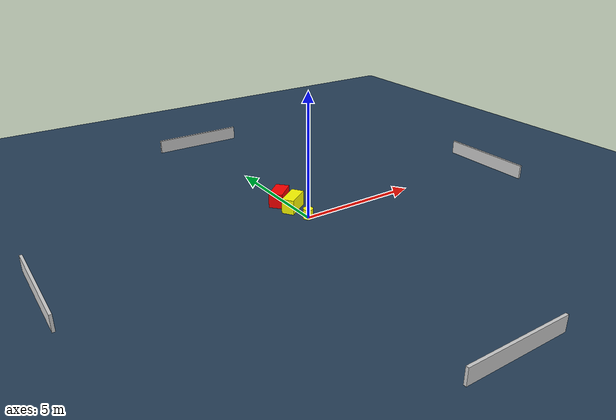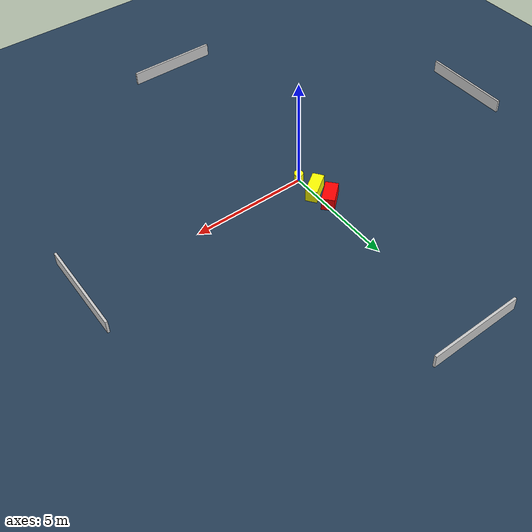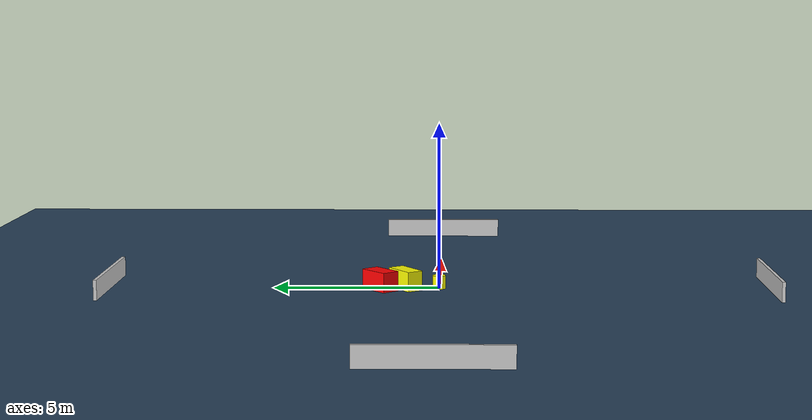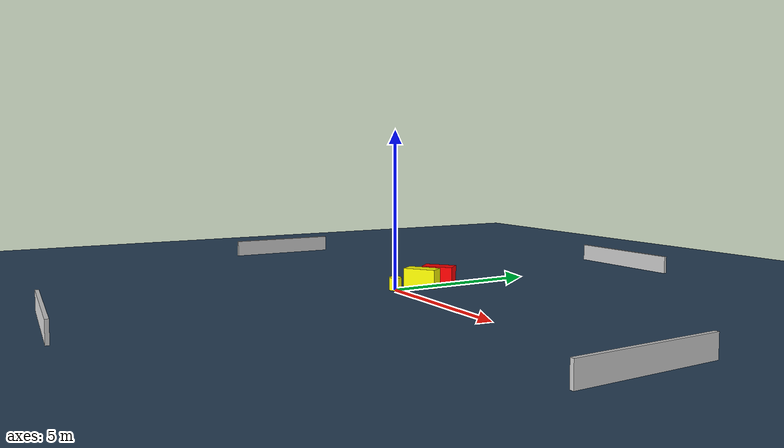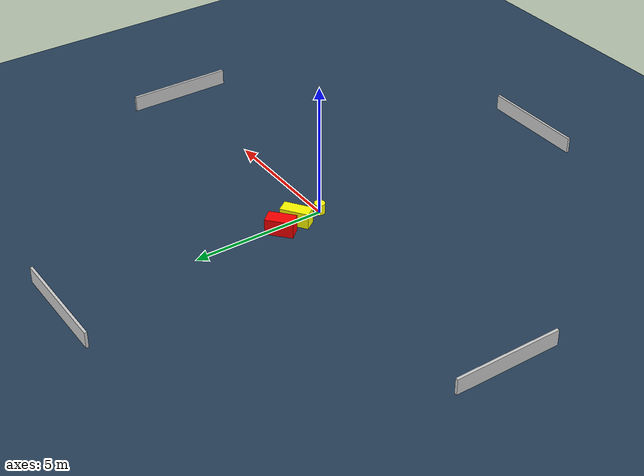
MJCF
<?xml version="1.0" ?>
<mujoco model="generated_environment">
  <option timestep="0.01" integrator="RK4" cone="elliptic"/>
  <default>
    <geom density="1"/>
  </default>
  <asset>
    <texture builtin="gradient" height="3072" name="skybox" rgb1="0.3 0.5 0.7" rgb2="0 0 0" type="skybox" width="512"/>
    <texture builtin="checker" height="300" name="groundplane" rgb1="0.2 0.3 0.4" rgb2="0.1 0.2 0.3" type="2d" width="300"/>
    <material name="groundplane" reflectance="0.2" texrepeat="5 5" texture="groundplane"/>
  </asset>
  <worldbody>
    <light dir="0 0 -1" directional="true" pos="0 0 1.5"/>
    <geom condim="3" friction="0.5 0.005 0.001" material="groundplane" name="floor" pos="0 0 0" size="0 0 0.05" type="plane"/>
    <body name="walls">
      <geom name="wall_1" condim="4" pos="-10.0 0.0 0.3" rgba="0.800000011920929 0.800000011920929 0.800000011920929 1.0" size="0.05 2.0 0.3" type="box"/>
      <geom name="wall_2" condim="4" pos="10.0 0.0 0.3" rgba="0.800000011920929 0.800000011920929 0.800000011920929 1.0" size="0.05 2.0 0.3" type="box"/>
      <geom name="wall_3" condim="4" pos="0.0 -10.0 0.3" rgba="0.800000011920929 0.800000011920929 0.800000011920929 1.0" size="2.0 0.05 0.3" type="box"/>
      <geom name="wall_4" condim="4" pos="0.0 10.0 0.3" rgba="0.800000011920929 0.800000011920929 0.800000011920929 1.0" size="2.0 0.05 0.3" type="box"/>
    </body>
    <body name="robot">
      <joint name="joint_x" type="slide" pos="0 0 0" axis="1 0 0"/>
      <joint name="joint_y" type="slide" pos="0 0 0" axis="0 1 0"/>
      <geom name="robot" type="cylinder" pos="0.0 0.0 0.2" size="0.2 0.2 0.0" mass="5.0" friction="1.0 0.005 0.0001" condim="4" rgba="1.0 1.0 0.0 1.0"/>
    </body>
    <body name="obstacle_1_movable">
      <geom name="obstacle_1_movable" condim="4" pos="-0.05300341389803309 1.0133235083389687 0.3" euler="0 0 124.95621200301717" friction="0.0 0.005 0.001" rgba="1.0 1.0 0.0 1.0" size="0.25103782728660173 0.5324572911374046 0.3" type="box" mass="0.1"/>
      <joint type="free"/>
    </body>
    <body name="obstacle_2_static">
      <geom name="obstacle_2_static" condim="4" pos="-0.22642702462030015 1.7711797651148393 0.3" euler="0 0 221.30226333638657" friction="0.0 0.005 0.001" rgba="1.0 0.0 0.0 1.0" size="0.5104907206747347 0.27864810447785093 0.3" type="box"/>
    </body>
  </worldbody>
  <actuator>
    <motor name="actuator_x" joint="joint_x" gear="1" ctrlrange="-1 1"/>
    <motor name="actuator_y" joint="joint_y" gear="1" ctrlrange="-1 1"/>
  </actuator>
</mujoco>
